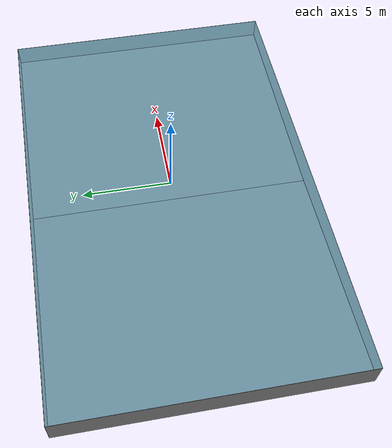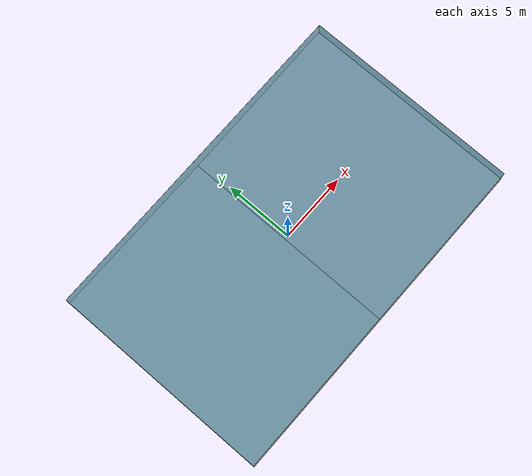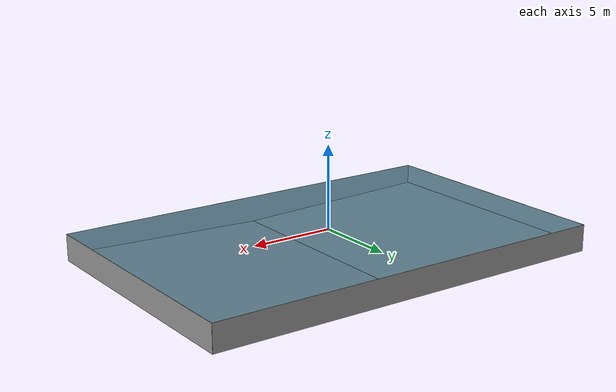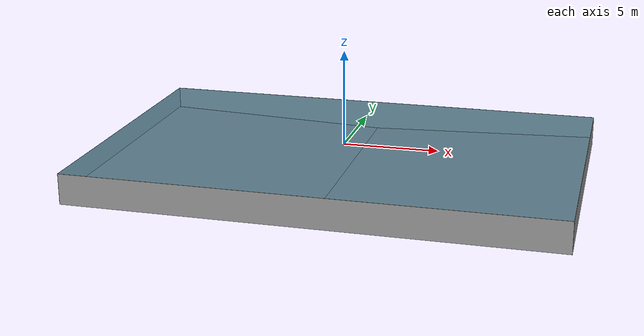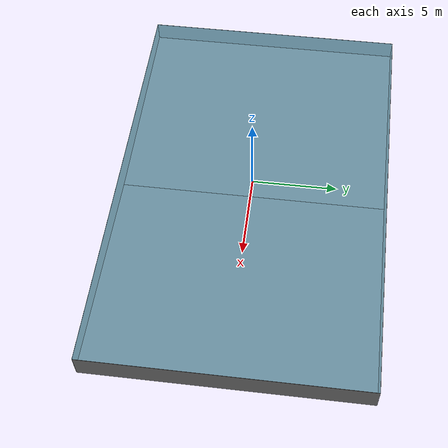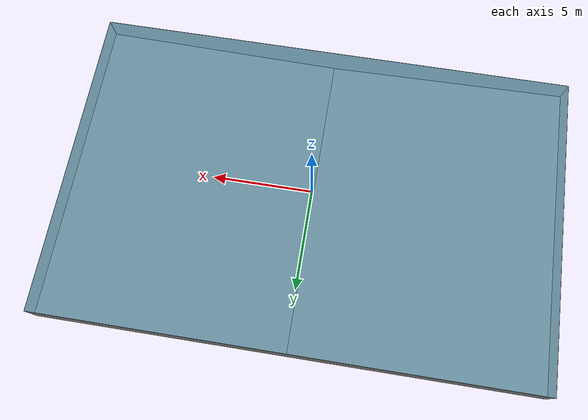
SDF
<sdf version="1.9">
 <world name="pool_empty">
  <plugin filename="gz-sim-particle-emitter-system" name="gz::sim::systems::ParticleEmitter"/>
  <plugin filename="gz-sim-physics-system" name="gz::sim::systems::Physics"/>
  <plugin filename="gz-sim-user-commands-system" name="gz::sim::systems::UserCommands"/>
  <plugin filename="gz-sim-scene-broadcaster-system" name="gz::sim::systems::SceneBroadcaster"/>
  <plugin filename="gz-sim-apply-link-wrench-system" name="gz::sim::systems::ApplyLinkWrench"/>
  <plugin filename="gz-sim-imu-system" name="gz::sim::systems::Imu"/>
  <plugin filename="gz-sim-sensors-system" name="gz::sim::systems::Sensors">
   <render_engine>ogre2</render_engine>
  </plugin>
  <plugin filename="gz-sim-dvl-system" name="gz::sim::systems::DopplerVelocityLogSystem"/>
  <plugin filename="gz-sim-buoyancy-system" name="gz::sim::systems::Buoyancy">
   <graded_buoyancy>
    <default_density>1000</default_density>
    <density_change><above_depth>0</above_depth><density>1</density></density_change>
   </graded_buoyancy>
   <enable>duburi</enable>
   <enable>payload_shot_0</enable>
   <enable>payload_shot_1</enable>
   <enable>payload_shot_2</enable>
   <enable>payload_shot_3</enable>
   <enable>payload_shot_4</enable>
   <enable>payload_shot_5</enable>
   <enable>payload_shot_6</enable>
   <enable>payload_shot_7</enable>
   <enable>payload_shot_8</enable>
   <enable>payload_shot_9</enable>
   <enable>payload_shot_10</enable>
   <enable>payload_shot_11</enable>
  </plugin>
  <physics name="default" type="dart">
   <max_step_size>0.001</max_step_size>
   <real_time_factor>1.0</real_time_factor>
   <real_time_update_rate>1000</real_time_update_rate>
   <dart>
    <collision_detector>bullet</collision_detector>
    <solver><solver_type>dantzig</solver_type></solver>
   </dart>
  </physics>
  <gravity>0 0 -9.81</gravity>
  <magnetic_field>3.9e-05 1.1e-06 2.6e-05</magnetic_field>
  <atmosphere type="adiabatic"/>
  <scene>
   <ambient>0.5 0.55 0.6 1</ambient>
   <background>0.08 0.26 0.4 1</background>
   <shadows>true</shadows>
   <fog>
    <color>0.14 0.34 0.42 1</color>
    <type>linear</type>
    <start>5.0</start>
    <end>60.0</end>
    <density>0.005</density>
   </fog>
  </scene>
  <light type="directional" name="sun">
   <pose>0 0 10 0 0 0</pose>
   <diffuse>0.48 0.52 0.56 1</diffuse>
   <specular>0.10 0.10 0.11 1</specular>
   <direction>-0.4 0.15 -0.9</direction>
  </light>
  <light type="directional" name="fill">
   <cast_shadows>false</cast_shadows>
   <pose>0 0 5 0 0 0</pose>
   <diffuse>0.22 0.28 0.34 1</diffuse>
   <specular>0.04 0.05 0.06 1</specular>
   <direction>0.3 -0.2 -1</direction>
  </light>
  <light type="directional" name="caustic_fill">
   <cast_shadows>false</cast_shadows>
   <pose>0 0 3 0 0 0</pose>
   <diffuse>0.12 0.22 0.26 1</diffuse>
   <specular>0.02 0.03 0.04 1</specular>
   <direction>0.1 0.35 -0.85</direction>
  </light>
  <model name="sauvc_pool">
   <static>true</static>
   <link name="floor_neg">
    <pose>-6.25 0 -1.4 0 0.0319891 0</pose>
    <inertial>
     <mass>1000</mass>
     <inertia><ixx>1000</ixx><ixy>0</ixy><ixz>0</ixz><iyy>1000</iyy><iyz>0</iyz><izz>1000</izz></inertia>
    </inertial>
    <visual name="floor_neg_visual">
     <pose>0 0 0.005 0 0 0</pose>
     <geometry><box><size>12.5064 16 0.01</size></box></geometry>
     <material>
      <ambient>0.55 0.55 0.55 1</ambient>
      <diffuse>0.55 0.55 0.55 1</diffuse>
      <specular>0.08 0.08 0.08 1</specular>
      <emissive>0 0 0 1</emissive>
      <pbr>
       <metal>
        <albedo_map>model://sauvc_textures/pool_floor_neg.png</albedo_map>
        <metalness>0.0</metalness>
        <roughness>0.85</roughness>
       </metal>
      </pbr>
     </material>
    </visual>
    <collision name="floor_neg_collision">
     <pose>0 0 -0.05 0 0 0</pose>
     <geometry><box><size>12.5064 16 0.1</size></box></geometry>
    </collision>
   </link>
   <link name="floor_pos">
    <pose>6.25 0 -1.4 0 -0.0319891 0</pose>
    <inertial>
     <mass>1000</mass>
     <inertia><ixx>1000</ixx><ixy>0</ixy><ixz>0</ixz><iyy>1000</iyy><iyz>0</iyz><izz>1000</izz></inertia>
    </inertial>
    <visual name="floor_pos_visual">
     <pose>0 0 0.005 0 0 0</pose>
     <geometry><box><size>12.5064 16 0.01</size></box></geometry>
     <material>
      <ambient>0.55 0.55 0.55 1</ambient>
      <diffuse>0.55 0.55 0.55 1</diffuse>
      <specular>0.08 0.08 0.08 1</specular>
      <emissive>0 0 0 1</emissive>
      <pbr>
       <metal>
        <albedo_map>model://sauvc_textures/pool_floor_pos.png</albedo_map>
        <metalness>0.0</metalness>
        <roughness>0.85</roughness>
       </metal>
      </pbr>
     </material>
    </visual>
    <collision name="floor_pos_collision">
     <pose>0 0 -0.05 0 0 0</pose>
     <geometry><box><size>12.5064 16 0.1</size></box></geometry>
    </collision>
   </link>
   <link name="wall_x_pos">
    <inertial>
     <mass>1000</mass>
     <inertia><ixx>1000</ixx><ixy>0</ixy><ixz>0</ixz><iyy>1000</iyy><iyz>0</iyz><izz>1000</izz></inertia>
    </inertial>
    <visual name="wall_x_pos_visual">
     <pose>12.5 0 -0.8 0 0 0</pose>
     <geometry><box><size>0.01 16 1.6</size></box></geometry>
     <material>
      <ambient>0.55 0.55 0.55 1</ambient>
      <diffuse>0.55 0.55 0.55 1</diffuse>
      <specular>0.08 0.08 0.08 1</specular>
      <emissive>0 0 0 1</emissive>
      <pbr>
       <metal>
        <albedo_map>model://sauvc_textures/pool_wall_long.png</albedo_map>
        <metalness>0.0</metalness>
        <roughness>0.85</roughness>
       </metal>
      </pbr>
     </material>
    </visual>
    <collision name="wall_x_pos_collision">
     <pose>12.605 0 -0.8 0 0 0</pose>
     <geometry><box><size>0.2 16.4 1.6</size></box></geometry>
    </collision>
   </link>
   <link name="wall_x_neg">
    <inertial>
     <mass>1000</mass>
     <inertia><ixx>1000</ixx><ixy>0</ixy><ixz>0</ixz><iyy>1000</iyy><iyz>0</iyz><izz>1000</izz></inertia>
    </inertial>
    <visual name="wall_x_neg_visual">
     <pose>-12.5 0 -0.8 0 0 0</pose>
     <geometry><box><size>0.01 16 1.6</size></box></geometry>
     <material>
      <ambient>0.55 0.55 0.55 1</ambient>
      <diffuse>0.55 0.55 0.55 1</diffuse>
      <specular>0.08 0.08 0.08 1</specular>
      <emissive>0 0 0 1</emissive>
      <pbr>
       <metal>
        <albedo_map>model://sauvc_textures/pool_wall_long.png</albedo_map>
        <metalness>0.0</metalness>
        <roughness>0.85</roughness>
       </metal>
      </pbr>
     </material>
    </visual>
    <collision name="wall_x_neg_collision">
     <pose>-12.605 0 -0.8 0 0 0</pose>
     <geometry><box><size>0.2 16.4 1.6</size></box></geometry>
    </collision>
   </link>
   <link name="wall_y_pos">
    <inertial>
     <mass>1000</mass>
     <inertia><ixx>1000</ixx><ixy>0</ixy><ixz>0</ixz><iyy>1000</iyy><iyz>0</iyz><izz>1000</izz></inertia>
    </inertial>
    <visual name="wall_y_pos_visual">
     <pose>0 8 -0.8 0 0 0</pose>
     <geometry><box><size>25 0.01 1.6</size></box></geometry>
     <material>
      <ambient>0.55 0.55 0.55 1</ambient>
      <diffuse>0.55 0.55 0.55 1</diffuse>
      <specular>0.08 0.08 0.08 1</specular>
      <emissive>0 0 0 1</emissive>
      <pbr>
       <metal>
        <albedo_map>model://sauvc_textures/pool_wall_short.png</albedo_map>
        <metalness>0.0</metalness>
        <roughness>0.85</roughness>
       </metal>
      </pbr>
     </material>
    </visual>
    <collision name="wall_y_pos_collision">
     <pose>0 8.105 -0.8 0 0 0</pose>
     <geometry><box><size>25 0.2 1.6</size></box></geometry>
    </collision>
   </link>
   <link name="wall_y_neg">
    <inertial>
     <mass>1000</mass>
     <inertia><ixx>1000</ixx><ixy>0</ixy><ixz>0</ixz><iyy>1000</iyy><iyz>0</iyz><izz>1000</izz></inertia>
    </inertial>
    <visual name="wall_y_neg_visual">
     <pose>0 -8 -0.8 0 0 0</pose>
     <geometry><box><size>25 0.01 1.6</size></box></geometry>
     <material>
      <ambient>0.55 0.55 0.55 1</ambient>
      <diffuse>0.55 0.55 0.55 1</diffuse>
      <specular>0.08 0.08 0.08 1</specular>
      <emissive>0 0 0 1</emissive>
      <pbr>
       <metal>
        <albedo_map>model://sauvc_textures/pool_wall_short.png</albedo_map>
        <metalness>0.0</metalness>
        <roughness>0.85</roughness>
       </metal>
      </pbr>
     </material>
    </visual>
    <collision name="wall_y_neg_collision">
     <pose>0 -8.105 -0.8 0 0 0</pose>
     <geometry><box><size>25 0.2 1.6</size></box></geometry>
    </collision>
   </link>
   <link name="water_surface">
    <inertial>
     <mass>1</mass>
     <inertia><ixx>1</ixx><ixy>0</ixy><ixz>0</ixz><iyy>1</iyy><iyz>0</iyz><izz>1</izz></inertia>
    </inertial>
    <visual name="water_surface_visual">
     <cast_shadows>false</cast_shadows>
     <transparency>0.18</transparency>
     <geometry><mesh><uri>model://robosub_meshes/meshes/water_sauvc.obj</uri></mesh></geometry>
     <material>
      <ambient>0.42 0.6 0.68 1</ambient>
      <diffuse>0.42 0.6 0.68 1</diffuse>
      <specular>0.35 0.35 0.35 1</specular>
      <emissive>0.1 0.1 0.1 1</emissive>
      <pbr>
       <metal>
        <albedo_map>model://sauvc_textures/water_surface.png</albedo_map>
        <metalness>0.0</metalness>
        <roughness>0.15</roughness>
       </metal>
      </pbr>
     </material>
    </visual>
   </link>
  </model>
  <model name="marine_snow">
   <static>true</static>
   <pose>0 0 -0.8 0 0 0</pose>
   <link name="link">
    <particle_emitter name="snow" type="box">
     <emitting>true</emitting>
     <size>12 12 1.6</size>
     <particle_size>0.006 0.006 0.006</particle_size>
     <lifetime>30</lifetime>
     <min_velocity>0.004</min_velocity>
     <max_velocity>0.025</max_velocity>
     <scale_rate>0</scale_rate>
     <rate>900</rate>
     <topic>marine_snow</topic>
     <material>
      <diffuse>0.80 0.84 0.80</diffuse>
      <specular>0.05 0.05 0.05</specular>
      <pbr><metal><albedo_map>model://sauvc_textures/marine_snow.png</albedo_map></metal></pbr>
     </material>
    </particle_emitter>
   </link>
  </model>
 </world>
</sdf>
